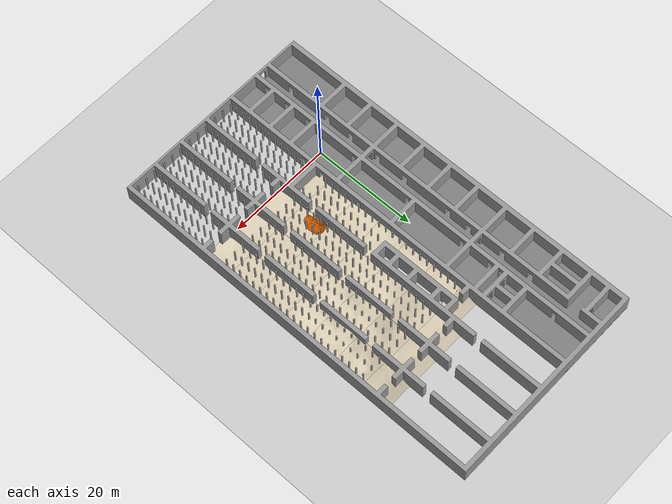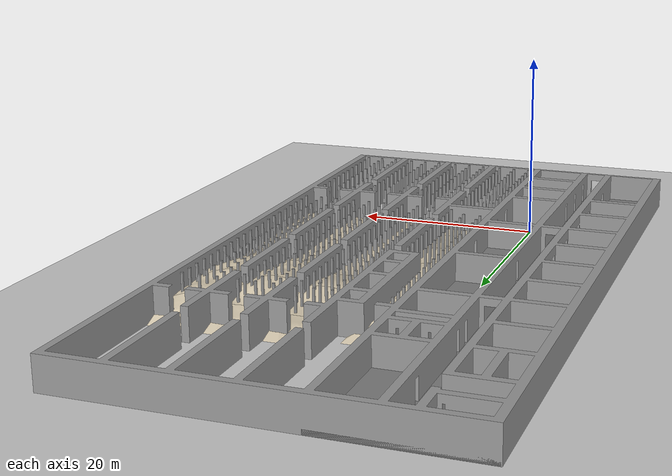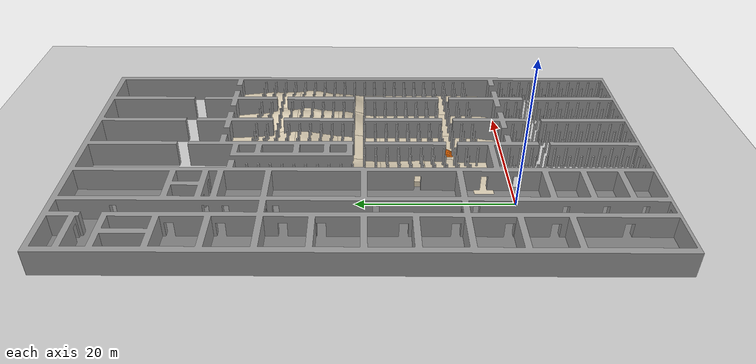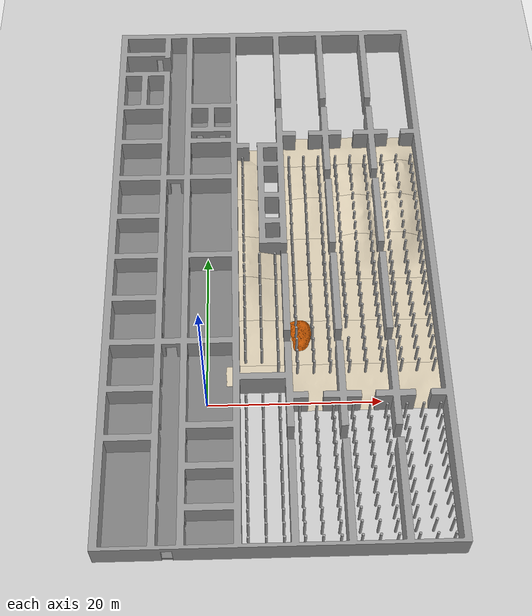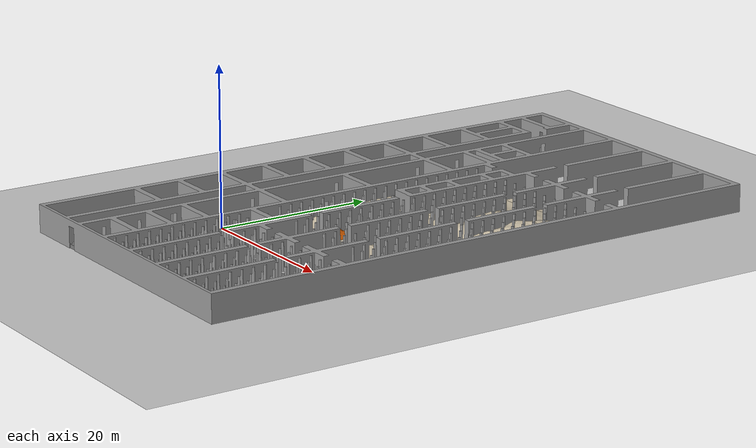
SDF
<?xml version="1.0" ?>
<sdf version="1.8">
  <world name="shelter_zero">
    <physics name="1ms" type="ignored">
      <max_step_size>0.001</max_step_size>
      <real_time_factor>1.0</real_time_factor>
    </physics>
    <plugin filename="gz-sim-physics-system" name="gz::sim::systems::Physics"></plugin>
    <plugin filename="gz-sim-user-commands-system" name="gz::sim::systems::UserCommands"></plugin>
    <plugin filename="gz-sim-scene-broadcaster-system" name="gz::sim::systems::SceneBroadcaster"></plugin>

    <light type="directional" name="sun">
      <cast_shadows>true</cast_shadows>
      <pose>0 0 10 0 0 0</pose>
      <diffuse>0.8 0.8 0.8 1</diffuse>
      <specular>0.2 0.2 0.2 1</specular>
      <direction>-0.5 0.1 -0.9</direction>
    </light>

    <model name="ground_plane">
      <static>true</static>
      <pose>7.8 19.4 -0.5 0 0 0</pose>
      <link name="link">
        <collision name="collision">
          <geometry><plane><normal>0 0 1</normal><size>40 75</size></plane></geometry>
        </collision>
        <visual name="visual">
          <geometry><plane><normal>0 0 1</normal><size>40 74.4</size></plane></geometry>
          <material><ambient>0.8 0.8 0.8 1</ambient><diffuse>0.8 0.8 0.8 1</diffuse></material>
        </visual>
      </link>
    </model>

    <model name="foundation_room_1">
      <static>true</static>
      <pose>-4.15 19.3 -0.25 0 0 0</pose>
      <link name="box_link">
        <collision name="box_collision">
          <geometry><box><size>15.8 74.0 0.5</size></box></geometry>
        </collision>
        <visual name="box_visual">
          <geometry><box><size>15.8 74.0 0.5</size></box></geometry>
          <material><ambient>0.5 0.5 0.5 1</ambient><diffuse>0.5 0.5 0.5 1</diffuse></material>
        </visual>
      </link>
    </model>

    <model name="shelter_environment">
      <static>true</static>
      <pose>0 0 -0.5 0 0 0</pose>
      <link name="environment_link">

        <collision name="Chunk_0_0_collision">
          <geometry><mesh><uri>file:///home/oleksandr/ros2_ws/src/fcm_project/fcm_digital_twin/worlds/Gazebo_Meshes/Chunk_0_0.stl</uri></mesh></geometry>
          <surface>
            <friction>
              <ode>
                <mu>1</mu>
                <mu2>1</mu2>
              </ode>
            </friction>
          </surface>
        </collision>
        <visual name="Chunk_0_0_visual">
          <geometry><mesh><uri>file:///home/oleksandr/ros2_ws/src/fcm_project/fcm_digital_twin/worlds/Gazebo_Meshes/Chunk_0_0.stl</uri></mesh></geometry>
          <material><ambient>0.85 0.80 0.70 1</ambient><diffuse>0.85 0.80 0.70 1</diffuse></material>
        </visual>

        <collision name="Chunk_0_1_collision">
          <geometry><mesh><uri>file:///home/oleksandr/ros2_ws/src/fcm_project/fcm_digital_twin/worlds/Gazebo_Meshes/Chunk_0_1.stl</uri></mesh></geometry>
          <surface>
            <friction>
              <ode>
                <mu>1</mu>
                <mu2>1</mu2>
              </ode>
            </friction>
          </surface>
        </collision>
        <visual name="Chunk_0_1_visual">
          <geometry><mesh><uri>file:///home/oleksandr/ros2_ws/src/fcm_project/fcm_digital_twin/worlds/Gazebo_Meshes/Chunk_0_1.stl</uri></mesh></geometry>
          <material><ambient>0.85 0.80 0.70 1</ambient><diffuse>0.85 0.80 0.70 1</diffuse></material>
        </visual>

        <collision name="Chunk_0_2_collision">
          <geometry><mesh><uri>file:///home/oleksandr/ros2_ws/src/fcm_project/fcm_digital_twin/worlds/Gazebo_Meshes/Chunk_0_2.stl</uri></mesh></geometry>
          <surface>
            <friction>
              <ode>
                <mu>1</mu>
                <mu2>1</mu2>
              </ode>
            </friction>
          </surface>
        </collision>
        <visual name="Chunk_0_2_visual">
          <geometry><mesh><uri>file:///home/oleksandr/ros2_ws/src/fcm_project/fcm_digital_twin/worlds/Gazebo_Meshes/Chunk_0_2.stl</uri></mesh></geometry>
          <material><ambient>0.85 0.80 0.70 1</ambient><diffuse>0.85 0.80 0.70 1</diffuse></material>
        </visual>

        <collision name="Chunk_0_3_collision">
          <geometry><mesh><uri>file:///home/oleksandr/ros2_ws/src/fcm_project/fcm_digital_twin/worlds/Gazebo_Meshes/Chunk_0_3.stl</uri></mesh></geometry>
          <surface>
            <friction>
              <ode>
                <mu>1</mu>
                <mu2>1</mu2>
              </ode>
            </friction>
          </surface>
        </collision>
        <visual name="Chunk_0_3_visual">
          <geometry><mesh><uri>file:///home/oleksandr/ros2_ws/src/fcm_project/fcm_digital_twin/worlds/Gazebo_Meshes/Chunk_0_3.stl</uri></mesh></geometry>
          <material><ambient>0.85 0.80 0.70 1</ambient><diffuse>0.85 0.80 0.70 1</diffuse></material>
        </visual>

        <collision name="Chunk_0_4_collision">
          <geometry><mesh><uri>file:///home/oleksandr/ros2_ws/src/fcm_project/fcm_digital_twin/worlds/Gazebo_Meshes/Chunk_0_4.stl</uri></mesh></geometry>
          <surface>
            <friction>
              <ode>
                <mu>1</mu>
                <mu2>1</mu2>
              </ode>
            </friction>
          </surface>
        </collision>
        <visual name="Chunk_0_4_visual">
          <geometry><mesh><uri>file:///home/oleksandr/ros2_ws/src/fcm_project/fcm_digital_twin/worlds/Gazebo_Meshes/Chunk_0_4.stl</uri></mesh></geometry>
          <material><ambient>0.85 0.80 0.70 1</ambient><diffuse>0.85 0.80 0.70 1</diffuse></material>
        </visual>

        <collision name="Chunk_0_5_collision">
          <geometry><mesh><uri>file:///home/oleksandr/ros2_ws/src/fcm_project/fcm_digital_twin/worlds/Gazebo_Meshes/Chunk_0_5.stl</uri></mesh></geometry>
          <surface>
            <friction>
              <ode>
                <mu>1</mu>
                <mu2>1</mu2>
              </ode>
            </friction>
          </surface>
        </collision>
        <visual name="Chunk_0_5_visual">
          <geometry><mesh><uri>file:///home/oleksandr/ros2_ws/src/fcm_project/fcm_digital_twin/worlds/Gazebo_Meshes/Chunk_0_5.stl</uri></mesh></geometry>
          <material><ambient>0.85 0.80 0.70 1</ambient><diffuse>0.85 0.80 0.70 1</diffuse></material>
        </visual>

        <collision name="Chunk_1_0_collision">
          <geometry><mesh><uri>file:///home/oleksandr/ros2_ws/src/fcm_project/fcm_digital_twin/worlds/Gazebo_Meshes/Chunk_1_0.stl</uri></mesh></geometry>
          <surface>
            <friction>
              <ode>
                <mu>1</mu>
                <mu2>1</mu2>
              </ode>
            </friction>
          </surface>
        </collision>
        <visual name="Chunk_1_0_visual">
          <geometry><mesh><uri>file:///home/oleksandr/ros2_ws/src/fcm_project/fcm_digital_twin/worlds/Gazebo_Meshes/Chunk_1_0.stl</uri></mesh></geometry>
          <material><ambient>0.85 0.80 0.70 1</ambient><diffuse>0.85 0.80 0.70 1</diffuse></material>
        </visual>

        <collision name="Chunk_1_1_collision">
          <geometry><mesh><uri>file:///home/oleksandr/ros2_ws/src/fcm_project/fcm_digital_twin/worlds/Gazebo_Meshes/Chunk_1_1.stl</uri></mesh></geometry>
          <surface>
            <friction>
              <ode>
                <mu>1</mu>
                <mu2>1</mu2>
              </ode>
            </friction>
          </surface>
        </collision>
        <visual name="Chunk_1_1_visual">
          <geometry><mesh><uri>file:///home/oleksandr/ros2_ws/src/fcm_project/fcm_digital_twin/worlds/Gazebo_Meshes/Chunk_1_1.stl</uri></mesh></geometry>
          <material><ambient>0.85 0.80 0.70 1</ambient><diffuse>0.85 0.80 0.70 1</diffuse></material>
        </visual>

        <collision name="Chunk_1_2_collision">
          <geometry><mesh><uri>file:///home/oleksandr/ros2_ws/src/fcm_project/fcm_digital_twin/worlds/Gazebo_Meshes/Chunk_1_2.stl</uri></mesh></geometry>
          <surface>
            <friction>
              <ode>
                <mu>1</mu>
                <mu2>1</mu2>
              </ode>
            </friction>
          </surface>
        </collision>
        <visual name="Chunk_1_2_visual">
          <geometry><mesh><uri>file:///home/oleksandr/ros2_ws/src/fcm_project/fcm_digital_twin/worlds/Gazebo_Meshes/Chunk_1_2.stl</uri></mesh></geometry>
          <material><ambient>0.85 0.80 0.70 1</ambient><diffuse>0.85 0.80 0.70 1</diffuse></material>
        </visual>

        <collision name="Chunk_1_3_collision">
          <geometry><mesh><uri>file:///home/oleksandr/ros2_ws/src/fcm_project/fcm_digital_twin/worlds/Gazebo_Meshes/Chunk_1_3.stl</uri></mesh></geometry>
          <surface>
            <friction>
              <ode>
                <mu>1</mu>
                <mu2>1</mu2>
              </ode>
            </friction>
          </surface>
        </collision>
        <visual name="Chunk_1_3_visual">
          <geometry><mesh><uri>file:///home/oleksandr/ros2_ws/src/fcm_project/fcm_digital_twin/worlds/Gazebo_Meshes/Chunk_1_3.stl</uri></mesh></geometry>
          <material><ambient>0.85 0.80 0.70 1</ambient><diffuse>0.85 0.80 0.70 1</diffuse></material>
        </visual>

        <collision name="Chunk_1_4_collision">
          <geometry><mesh><uri>file:///home/oleksandr/ros2_ws/src/fcm_project/fcm_digital_twin/worlds/Gazebo_Meshes/Chunk_1_4.stl</uri></mesh></geometry>
          <surface>
            <friction>
              <ode>
                <mu>1</mu>
                <mu2>1</mu2>
              </ode>
            </friction>
          </surface>
        </collision>
        <visual name="Chunk_1_4_visual">
          <geometry><mesh><uri>file:///home/oleksandr/ros2_ws/src/fcm_project/fcm_digital_twin/worlds/Gazebo_Meshes/Chunk_1_4.stl</uri></mesh></geometry>
          <material><ambient>0.85 0.80 0.70 1</ambient><diffuse>0.85 0.80 0.70 1</diffuse></material>
        </visual>

        <collision name="Chunk_1_5_collision">
          <geometry><mesh><uri>file:///home/oleksandr/ros2_ws/src/fcm_project/fcm_digital_twin/worlds/Gazebo_Meshes/Chunk_1_5.stl</uri></mesh></geometry>
          <surface>
            <friction>
              <ode>
                <mu>1</mu>
                <mu2>1</mu2>
              </ode>
            </friction>
          </surface>
        </collision>
        <visual name="Chunk_1_5_visual">
          <geometry><mesh><uri>file:///home/oleksandr/ros2_ws/src/fcm_project/fcm_digital_twin/worlds/Gazebo_Meshes/Chunk_1_5.stl</uri></mesh></geometry>
          <material><ambient>0.85 0.80 0.70 1</ambient><diffuse>0.85 0.80 0.70 1</diffuse></material>
        </visual>

        <collision name="Chunk_1_6_collision">
          <geometry><mesh><uri>file:///home/oleksandr/ros2_ws/src/fcm_project/fcm_digital_twin/worlds/Gazebo_Meshes/Chunk_1_6.stl</uri></mesh></geometry>
          <surface>
            <friction>
              <ode>
                <mu>1</mu>
                <mu2>1</mu2>
              </ode>
            </friction>
          </surface>
        </collision>
        <visual name="Chunk_1_6_visual">
          <geometry><mesh><uri>file:///home/oleksandr/ros2_ws/src/fcm_project/fcm_digital_twin/worlds/Gazebo_Meshes/Chunk_1_6.stl</uri></mesh></geometry>
          <material><ambient>0.85 0.80 0.70 1</ambient><diffuse>0.85 0.80 0.70 1</diffuse></material>
        </visual>

        <collision name="Chunk_2_0_collision">
          <geometry><mesh><uri>file:///home/oleksandr/ros2_ws/src/fcm_project/fcm_digital_twin/worlds/Gazebo_Meshes/Chunk_2_0.stl</uri></mesh></geometry>
          <surface>
            <friction>
              <ode>
                <mu>1</mu>
                <mu2>1</mu2>
              </ode>
            </friction>
          </surface>
        </collision>
        <visual name="Chunk_2_0_visual">
          <geometry><mesh><uri>file:///home/oleksandr/ros2_ws/src/fcm_project/fcm_digital_twin/worlds/Gazebo_Meshes/Chunk_2_0.stl</uri></mesh></geometry>
          <material><ambient>0.85 0.80 0.70 1</ambient><diffuse>0.85 0.80 0.70 1</diffuse></material>
        </visual>

        <collision name="Chunk_2_1_collision">
          <geometry><mesh><uri>file:///home/oleksandr/ros2_ws/src/fcm_project/fcm_digital_twin/worlds/Gazebo_Meshes/Chunk_2_1.stl</uri></mesh></geometry>
          <surface>
            <friction>
              <ode>
                <mu>1</mu>
                <mu2>1</mu2>
              </ode>
            </friction>
          </surface>
        </collision>
        <visual name="Chunk_2_1_visual">
          <geometry><mesh><uri>file:///home/oleksandr/ros2_ws/src/fcm_project/fcm_digital_twin/worlds/Gazebo_Meshes/Chunk_2_1.stl</uri></mesh></geometry>
          <material><ambient>0.85 0.80 0.70 1</ambient><diffuse>0.85 0.80 0.70 1</diffuse></material>
        </visual>

        <collision name="Chunk_2_2_collision">
          <geometry><mesh><uri>file:///home/oleksandr/ros2_ws/src/fcm_project/fcm_digital_twin/worlds/Gazebo_Meshes/Chunk_2_2.stl</uri></mesh></geometry>
          <surface>
            <friction>
              <ode>
                <mu>1</mu>
                <mu2>1</mu2>
              </ode>
            </friction>
          </surface>
        </collision>
        <visual name="Chunk_2_2_visual">
          <geometry><mesh><uri>file:///home/oleksandr/ros2_ws/src/fcm_project/fcm_digital_twin/worlds/Gazebo_Meshes/Chunk_2_2.stl</uri></mesh></geometry>
          <material><ambient>0.85 0.80 0.70 1</ambient><diffuse>0.85 0.80 0.70 1</diffuse></material>
        </visual>

        <collision name="Chunk_2_3_collision">
          <geometry><mesh><uri>file:///home/oleksandr/ros2_ws/src/fcm_project/fcm_digital_twin/worlds/Gazebo_Meshes/Chunk_2_3.stl</uri></mesh></geometry>
          <surface>
            <friction>
              <ode>
                <mu>1</mu>
                <mu2>1</mu2>
              </ode>
            </friction>
          </surface>
        </collision>
        <visual name="Chunk_2_3_visual">
          <geometry><mesh><uri>file:///home/oleksandr/ros2_ws/src/fcm_project/fcm_digital_twin/worlds/Gazebo_Meshes/Chunk_2_3.stl</uri></mesh></geometry>
          <material><ambient>0.85 0.80 0.70 1</ambient><diffuse>0.85 0.80 0.70 1</diffuse></material>
        </visual>

        <collision name="Chunk_2_4_collision">
          <geometry><mesh><uri>file:///home/oleksandr/ros2_ws/src/fcm_project/fcm_digital_twin/worlds/Gazebo_Meshes/Chunk_2_4.stl</uri></mesh></geometry>
          <surface>
            <friction>
              <ode>
                <mu>1</mu>
                <mu2>1</mu2>
              </ode>
            </friction>
          </surface>
        </collision>
        <visual name="Chunk_2_4_visual">
          <geometry><mesh><uri>file:///home/oleksandr/ros2_ws/src/fcm_project/fcm_digital_twin/worlds/Gazebo_Meshes/Chunk_2_4.stl</uri></mesh></geometry>
          <material><ambient>0.85 0.80 0.70 1</ambient><diffuse>0.85 0.80 0.70 1</diffuse></material>
        </visual>

        <collision name="Chunk_2_5_collision">
          <geometry><mesh><uri>file:///home/oleksandr/ros2_ws/src/fcm_project/fcm_digital_twin/worlds/Gazebo_Meshes/Chunk_2_5.stl</uri></mesh></geometry>
          <surface>
            <friction>
              <ode>
                <mu>1</mu>
                <mu2>1</mu2>
              </ode>
            </friction>
          </surface>
        </collision>
        <visual name="Chunk_2_5_visual">
          <geometry><mesh><uri>file:///home/oleksandr/ros2_ws/src/fcm_project/fcm_digital_twin/worlds/Gazebo_Meshes/Chunk_2_5.stl</uri></mesh></geometry>
          <material><ambient>0.85 0.80 0.70 1</ambient><diffuse>0.85 0.80 0.70 1</diffuse></material>
        </visual>

        <collision name="Chunk_2_6_collision">
          <geometry><mesh><uri>file:///home/oleksandr/ros2_ws/src/fcm_project/fcm_digital_twin/worlds/Gazebo_Meshes/Chunk_2_6.stl</uri></mesh></geometry>
          <surface>
            <friction>
              <ode>
                <mu>1</mu>
                <mu2>1</mu2>
              </ode>
            </friction>
          </surface>
        </collision>
        <visual name="Chunk_2_6_visual">
          <geometry><mesh><uri>file:///home/oleksandr/ros2_ws/src/fcm_project/fcm_digital_twin/worlds/Gazebo_Meshes/Chunk_2_6.stl</uri></mesh></geometry>
          <material><ambient>0.85 0.80 0.70 1</ambient><diffuse>0.85 0.80 0.70 1</diffuse></material>
        </visual>

        <collision name="Chunk_3_0_collision">
          <geometry><mesh><uri>file:///home/oleksandr/ros2_ws/src/fcm_project/fcm_digital_twin/worlds/Gazebo_Meshes/Chunk_3_0.stl</uri></mesh></geometry>
          <surface>
            <friction>
              <ode>
                <mu>1</mu>
                <mu2>1</mu2>
              </ode>
            </friction>
          </surface>
        </collision>
        <visual name="Chunk_3_0_visual">
          <geometry><mesh><uri>file:///home/oleksandr/ros2_ws/src/fcm_project/fcm_digital_twin/worlds/Gazebo_Meshes/Chunk_3_0.stl</uri></mesh></geometry>
          <material><ambient>0.85 0.80 0.70 1</ambient><diffuse>0.85 0.80 0.70 1</diffuse></material>
        </visual>

        <collision name="Chunk_3_1_collision">
          <geometry><mesh><uri>file:///home/oleksandr/ros2_ws/src/fcm_project/fcm_digital_twin/worlds/Gazebo_Meshes/Chunk_3_1.stl</uri></mesh></geometry>
          <surface>
            <friction>
              <ode>
                <mu>1</mu>
                <mu2>1</mu2>
              </ode>
            </friction>
          </surface>
        </collision>
        <visual name="Chunk_3_1_visual">
          <geometry><mesh><uri>file:///home/oleksandr/ros2_ws/src/fcm_project/fcm_digital_twin/worlds/Gazebo_Meshes/Chunk_3_1.stl</uri></mesh></geometry>
          <material><ambient>0.85 0.80 0.70 1</ambient><diffuse>0.85 0.80 0.70 1</diffuse></material>
        </visual>

        <collision name="Chunk_3_2_collision">
          <geometry><mesh><uri>file:///home/oleksandr/ros2_ws/src/fcm_project/fcm_digital_twin/worlds/Gazebo_Meshes/Chunk_3_2.stl</uri></mesh></geometry>
          <surface>
            <friction>
              <ode>
                <mu>1</mu>
                <mu2>1</mu2>
              </ode>
            </friction>
          </surface>
        </collision>
        <visual name="Chunk_3_2_visual">
          <geometry><mesh><uri>file:///home/oleksandr/ros2_ws/src/fcm_project/fcm_digital_twin/worlds/Gazebo_Meshes/Chunk_3_2.stl</uri></mesh></geometry>
          <material><ambient>0.85 0.80 0.70 1</ambient><diffuse>0.85 0.80 0.70 1</diffuse></material>
        </visual>

        <collision name="Chunk_3_3_collision">
          <geometry><mesh><uri>file:///home/oleksandr/ros2_ws/src/fcm_project/fcm_digital_twin/worlds/Gazebo_Meshes/Chunk_3_3.stl</uri></mesh></geometry>
          <surface>
            <friction>
              <ode>
                <mu>1</mu>
                <mu2>1</mu2>
              </ode>
            </friction>
          </surface>
        </collision>
        <visual name="Chunk_3_3_visual">
          <geometry><mesh><uri>file:///home/oleksandr/ros2_ws/src/fcm_project/fcm_digital_twin/worlds/Gazebo_Meshes/Chunk_3_3.stl</uri></mesh></geometry>
          <material><ambient>0.85 0.80 0.70 1</ambient><diffuse>0.85 0.80 0.70 1</diffuse></material>
        </visual>

        <collision name="Chunk_3_4_collision">
          <geometry><mesh><uri>file:///home/oleksandr/ros2_ws/src/fcm_project/fcm_digital_twin/worlds/Gazebo_Meshes/Chunk_3_4.stl</uri></mesh></geometry>
          <surface>
            <friction>
              <ode>
                <mu>1</mu>
                <mu2>1</mu2>
              </ode>
            </friction>
          </surface>
        </collision>
        <visual name="Chunk_3_4_visual">
          <geometry><mesh><uri>file:///home/oleksandr/ros2_ws/src/fcm_project/fcm_digital_twin/worlds/Gazebo_Meshes/Chunk_3_4.stl</uri></mesh></geometry>
          <material><ambient>0.85 0.80 0.70 1</ambient><diffuse>0.85 0.80 0.70 1</diffuse></material>
        </visual>

        <collision name="Chunk_3_5_collision">
          <geometry><mesh><uri>file:///home/oleksandr/ros2_ws/src/fcm_project/fcm_digital_twin/worlds/Gazebo_Meshes/Chunk_3_5.stl</uri></mesh></geometry>
          <surface>
            <friction>
              <ode>
                <mu>1</mu>
                <mu2>1</mu2>
              </ode>
            </friction>
          </surface>
        </collision>
        <visual name="Chunk_3_5_visual">
          <geometry><mesh><uri>file:///home/oleksandr/ros2_ws/src/fcm_project/fcm_digital_twin/worlds/Gazebo_Meshes/Chunk_3_5.stl</uri></mesh></geometry>
          <material><ambient>0.85 0.80 0.70 1</ambient><diffuse>0.85 0.80 0.70 1</diffuse></material>
        </visual>

        <collision name="Chunk_3_6_collision">
          <geometry><mesh><uri>file:///home/oleksandr/ros2_ws/src/fcm_project/fcm_digital_twin/worlds/Gazebo_Meshes/Chunk_3_6.stl</uri></mesh></geometry>
          <surface>
            <friction>
              <ode>
                <mu>1</mu>
                <mu2>1</mu2>
              </ode>
            </friction>
          </surface>
        </collision>
        <visual name="Chunk_3_6_visual">
          <geometry><mesh><uri>file:///home/oleksandr/ros2_ws/src/fcm_project/fcm_digital_twin/worlds/Gazebo_Meshes/Chunk_3_6.stl</uri></mesh></geometry>
          <material><ambient>0.85 0.80 0.70 1</ambient><diffuse>0.85 0.80 0.70 1</diffuse></material>
        </visual>

        <collision name="zs_main_walls_collision">
          <geometry><mesh><uri>file:///home/oleksandr/ros2_ws/src/fcm_project/fcm_digital_twin/worlds/Gazebo_Meshes/zs_main_walls.stl</uri></mesh></geometry>
          <surface>
            <friction>
              <ode>
                <mu>1</mu>
                <mu2>1</mu2>
              </ode>
            </friction>
          </surface>
        </collision>
        <visual name="zs_main_walls_visual">
          <geometry><mesh><uri>file:///home/oleksandr/ros2_ws/src/fcm_project/fcm_digital_twin/worlds/Gazebo_Meshes/zs_main_walls.stl</uri></mesh></geometry>
          <material><ambient>0.6 0.6 0.6 1</ambient><diffuse>0.6 0.6 0.6 1</diffuse></material>
        </visual>

        <collision name="lfsm3_collision">
          <geometry><mesh><uri>file:///home/oleksandr/ros2_ws/src/fcm_project/fcm_digital_twin/worlds/Gazebo_Meshes/lfsm3.stl</uri></mesh></geometry>
          <surface>
            <friction>
              <ode>
                <mu>1</mu>
                <mu2>1</mu2>
              </ode>
            </friction>
          </surface>
        </collision>
        <visual name="lfsm3_visual">
          <geometry><mesh><uri>file:///home/oleksandr/ros2_ws/src/fcm_project/fcm_digital_twin/worlds/Gazebo_Meshes/lfsm3.stl</uri></mesh></geometry>
          <material><ambient>0.8 0.35 0.0 1</ambient><diffuse>0.8 0.35 0.0 1</diffuse></material>
        </visual>

        <collision name="zs_pip_forset_collision">
          <geometry><mesh><uri>file:///home/oleksandr/ros2_ws/src/fcm_project/fcm_digital_twin/worlds/Gazebo_Meshes/zs_pip_forset.stl</uri></mesh></geometry>
          <surface>
            <friction>
              <ode>
                <mu>1</mu>
                <mu2>1</mu2>
              </ode>
            </friction>
          </surface>
        </collision>
        <visual name="zs_pip_forset_visual">
          <geometry><mesh><uri>file:///home/oleksandr/ros2_ws/src/fcm_project/fcm_digital_twin/worlds/Gazebo_Meshes/zs_pip_forset.stl</uri></mesh></geometry>
          <material><ambient>0.6 0.6 0.6 1</ambient><diffuse>0.6 0.6 0.6 1</diffuse></material>
        </visual>
      </link>
    </model>
  </world>
</sdf>
